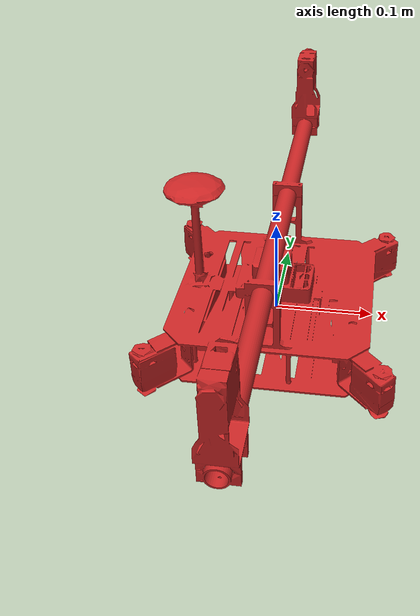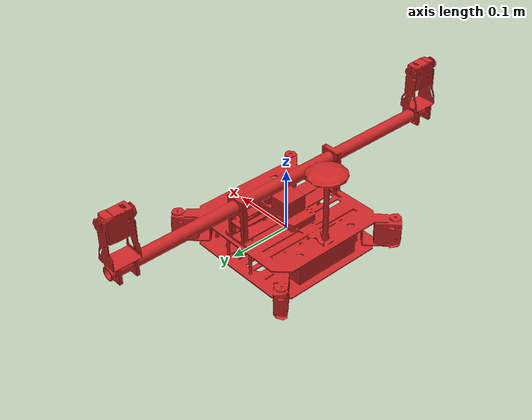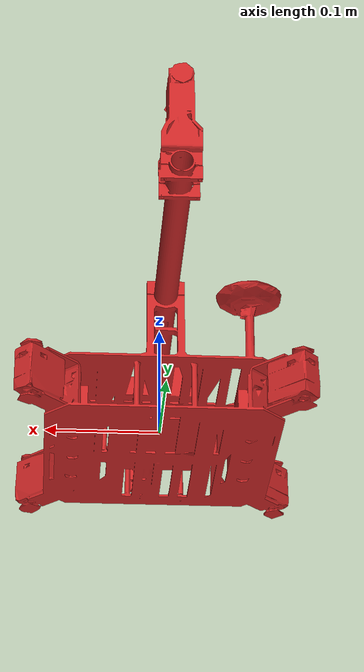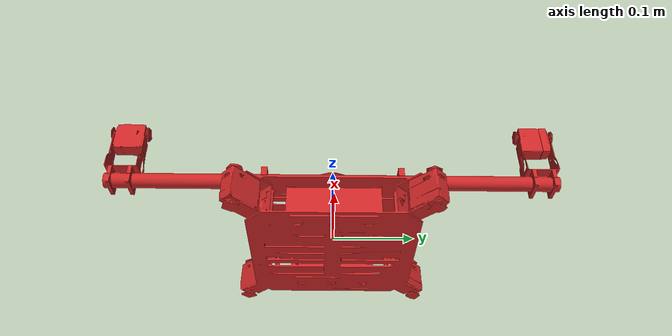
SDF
<?xml version="1.0" ?>

  <sdf version="1.5">
    <model name="usl_quadruped2_bicopter_base">
      <link name="base">
      <pose>0 0 0 0 0 0</pose>
      <inertial>
        <pose>0 0 0 0 0 0</pose>
        <mass>0.5</mass>
        <inertia>
          <ixx>0.2</ixx>
          <iyy>0.2</iyy>
          <izz>0.2</izz>
          <ixy>0</ixy>
          <ixz>0</ixz>
          <iyz>0</iyz>
        </inertia>
      </inertial>
      <collision name="base_collision">
        <pose>0 0 0  0 0 0</pose>
        <geometry>
          <mesh>
            <uri>model://usl_quadruped2_bicopter_base/meshes/body.dae</uri>
          </mesh>
        </geometry>
        <surface>
          <contact>
            <ode/>
          </contact>
          <friction>
            <ode/>
          </friction>
        </surface>
      </collision>
      <visual name="base_visual">
        <geometry>
          <mesh>
            <uri>model://usl_quadruped2_bicopter_base/meshes/body.dae</uri>
          </mesh>
        </geometry>
        <material>
          <script>
            <name>Gazebo/Red</name>
          </script>
        </material>
      </visual>
    </link>
    <link name='imu_link'>
    <inertial>
      <pose>0 0 0 0 0 0</pose>
      <mass>0.15</mass>
      <inertia>
        <ixx>0.00001</ixx>
        <ixy>0</ixy>
        <ixz>0</ixz>
        <iyy>0.00002</iyy>
        <iyz>0</iyz>
        <izz>0.00002</izz>
      </inertia>
    </inertial>
    <sensor name="imu_sensor" type="imu">
      <pose>0 0 0 3.141593 0 0</pose>
      <always_on>1</always_on>
      <update_rate>1000.0</update_rate>
      <topic>__default_topic__</topic>
    </sensor>
  </link>
  <joint name='imu_joint' type='revolute'>
    <child>imu_link</child>
    <parent>base</parent>
    <axis>
      <xyz>0 0 1</xyz>
      <limit>
        <lower>-0.0001</lower>
        <upper>0.00001</upper>
        <effort>0</effort>
        <velocity>0</velocity>
      </limit>
      <dynamics>
        <damping>1.0</damping>
      </dynamics>
      <use_parent_model_frame>1</use_parent_model_frame>
    </axis>
    <physics>
      <ode>
        <implicit_spring_damper>1</implicit_spring_damper>
      </ode>
    </physics>
  </joint>

</model>
</sdf>
